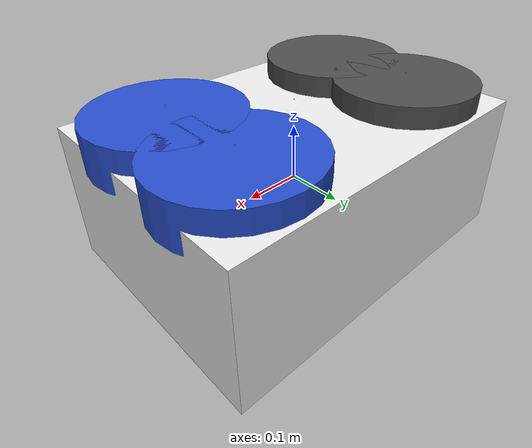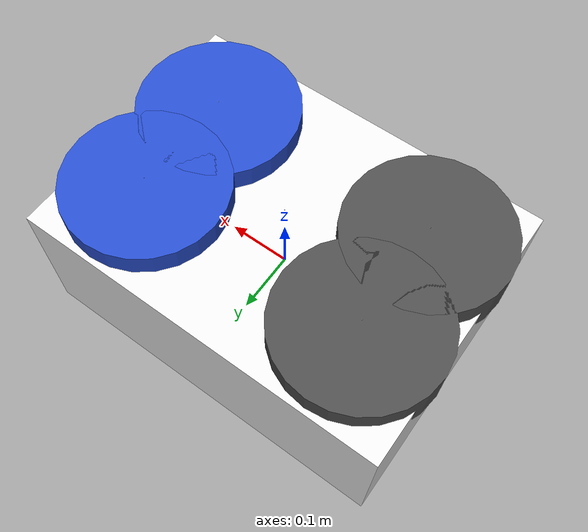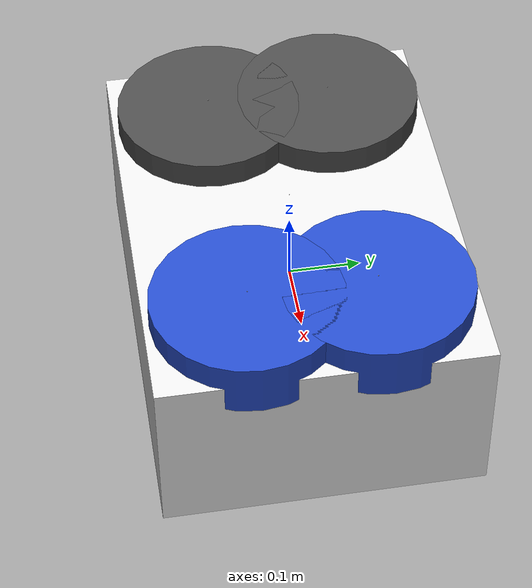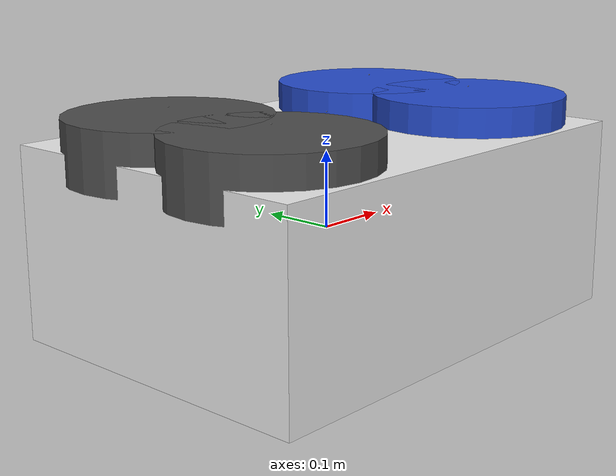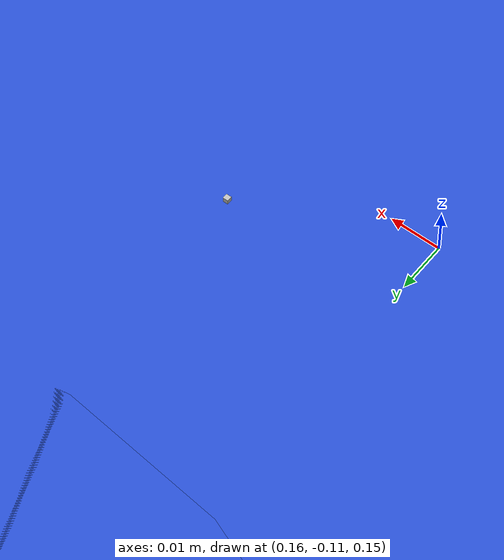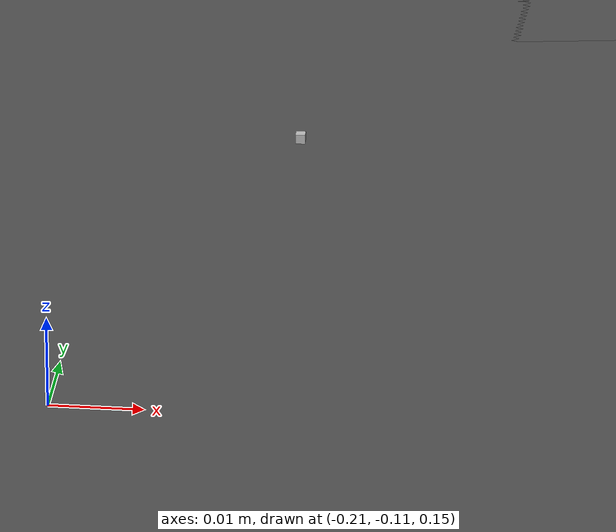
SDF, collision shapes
<?xml version='1.0'?>
<sdf version='1.6'>
  <model name='uav1'>
    <link name='base_link'>
      <pose frame=''>0 0 0 0 -0 0</pose>
      <inertial>
        <pose frame=''>0 0 0 0 -0 0</pose>
        <mass>1.5</mass>
        <inertia>
          <ixx>0.029125</ixx>
          <ixy>0</ixy>
          <ixz>0</ixz>
          <iyy>0.029125</iyy>
          <iyz>0</iyz>
          <izz>0.055225</izz>
        </inertia>
      </inertial>
      <collision name='base_link_inertia_collision'>
        <pose frame=''>0 0 0 0 -0 0</pose>
        <geometry>
          <box>
            <size>0.6082 0.441 0.248</size>
          </box>
        </geometry>
        <surface>
          <contact>
            <ode>
              <min_depth>0.001</min_depth>
              <max_vel>0</max_vel>
            </ode>
          </contact>
          <friction>
            <ode/>
          </friction>
        </surface>
      </collision>
      <visual name='base_link_inertia_visual'>
        <pose frame=''>0 0 0 0 -0 0</pose>
        <geometry>
          <mesh>
            <scale>1 1 1</scale>
            <uri>model://meshes/drone_body.stl</uri>
          </mesh>
        </geometry>
        <material>
          <script>
            <name>Gazebo/White</name>
            <uri>file://media/materials/scripts/gazebo.material</uri>
          </script>
        </material>
      </visual>
      <gravity>1</gravity>
      <velocity_decay/>
    </link>
    <link name='/imu_link'>
      <pose frame=''>0 0 0 0 -0 0</pose>
      <inertial>
        <pose frame=''>0 0 0 0 -0 0</pose>
        <mass>0.015</mass>
        <inertia>
          <ixx>1e-05</ixx>
          <ixy>0</ixy>
          <ixz>0</ixz>
          <iyy>1e-05</iyy>
          <iyz>0</iyz>
          <izz>1e-05</izz>
        </inertia>
      </inertial>
    </link>
    <joint name='/imu_joint' type='revolute'>
      <child>/imu_link</child>
      <parent>base_link</parent>
      <axis>
        <xyz>1 0 0</xyz>
        <limit>
          <lower>0</lower>
          <upper>0</upper>
          <effort>0</effort>
          <velocity>0</velocity>
        </limit>
        <dynamics>
          <spring_reference>0</spring_reference>
          <spring_stiffness>0</spring_stiffness>
        </dynamics>
        <use_parent_model_frame>1</use_parent_model_frame>
      </axis>
    </joint>
    <link name='rotor_0'>
      <pose frame=''>0.18623 -0.085 0.124 0 -0 0</pose>
      <inertial>
        <pose frame=''>0 0 0 0 -0 0</pose>
        <mass>0.005</mass>
        <inertia>
          <ixx>9.75e-07</ixx>
          <ixy>0</ixy>
          <ixz>0</ixz>
          <iyy>0.000273104</iyy>
          <iyz>0</iyz>
          <izz>0.000274004</izz>
        </inertia>
      </inertial>
      <collision name='rotor_0_collision'>
        <pose frame=''>0 0 0 0 -0 0</pose>
        <geometry>
          <cylinder>
            <length>0.0762</length>
            <radius>0.128</radius>
          </cylinder>
        </geometry>
        <surface>
          <contact>
            <ode/>
          </contact>
          <friction>
            <ode/>
          </friction>
        </surface>
      </collision>
      <visual name='rotor_0_visual'>
        <pose frame=''>0 0 0 0 -0 0</pose>
        <geometry>
          <mesh>
            <scale>1 1 1</scale>
            <uri>model://meshes/rotor_spinner.stl</uri>
          </mesh>
        </geometry>
        <material>
          <script>
            <name>Gazebo/Blue</name>
            <uri>file://media/materials/scripts/gazebo.material</uri>
          </script>
        </material>
      </visual>
      <gravity>1</gravity>
      <velocity_decay/>
    </link>
    <joint name='rotor_0_joint' type='revolute'>
      <child>rotor_0</child>
      <parent>base_link</parent>
      <axis>
        <xyz>0 0 1</xyz>
        <limit>
          <lower>-1e+16</lower>
          <upper>1e+16</upper>
        </limit>
        <dynamics>
          <spring_reference>0</spring_reference>
          <spring_stiffness>0</spring_stiffness>
        </dynamics>
        <use_parent_model_frame>1</use_parent_model_frame>
      </axis>
    </joint>
    <link name='rotor_1'>
      <pose frame=''>-0.18623 0.085 0.124 0 -0 0</pose>
      <inertial>
        <pose frame=''>0 0 0 0 -0 0</pose>
        <mass>0.005</mass>
        <inertia>
          <ixx>9.75e-07</ixx>
          <ixy>0</ixy>
          <ixz>0</ixz>
          <iyy>0.000273104</iyy>
          <iyz>0</iyz>
          <izz>0.000274004</izz>
        </inertia>
      </inertial>
      <collision name='rotor_1_collision'>
        <pose frame=''>0 0 0 0 -0 0</pose>
        <geometry>
          <cylinder>
            <length>0.0762</length>
            <radius>0.128</radius>
          </cylinder>
        </geometry>
        <surface>
          <contact>
            <ode/>
          </contact>
          <friction>
            <ode/>
          </friction>
        </surface>
      </collision>
      <visual name='rotor_1_visual'>
        <pose frame=''>0 0 0 0 -0 0</pose>
        <geometry>
          <mesh>
            <scale>1 1 1</scale>
            <uri>model://meshes/rotor_spinner.stl</uri>
          </mesh>
        </geometry>
        <material>
          <script>
            <name>Gazebo/DarkGrey</name>
            <uri>file://media/materials/scripts/gazebo.material</uri>
          </script>
        </material>
      </visual>
      <gravity>1</gravity>
      <velocity_decay/>
    </link>
    <joint name='rotor_1_joint' type='revolute'>
      <child>rotor_1</child>
      <parent>base_link</parent>
      <axis>
        <xyz>0 0 1</xyz>
        <limit>
          <lower>-1e+16</lower>
          <upper>1e+16</upper>
        </limit>
        <dynamics>
          <spring_reference>0</spring_reference>
          <spring_stiffness>0</spring_stiffness>
        </dynamics>
        <use_parent_model_frame>1</use_parent_model_frame>
      </axis>
    </joint>
    <link name='rotor_2'>
      <pose frame=''>0.18623 0.085 0.124 0 -0 0</pose>
      <inertial>
        <pose frame=''>0 0 0 0 -0 0</pose>
        <mass>0.005</mass>
        <inertia>
          <ixx>9.75e-07</ixx>
          <ixy>0</ixy>
          <ixz>0</ixz>
          <iyy>0.000273104</iyy>
          <iyz>0</iyz>
          <izz>0.000274004</izz>
        </inertia>
      </inertial>
      <collision name='rotor_2_collision'>
        <pose frame=''>0 0 0 0 -0 0</pose>
        <geometry>
          <cylinder>
            <length>0.0762</length>
            <radius>0.128</radius>
          </cylinder>
        </geometry>
        <surface>
          <contact>
            <ode/>
          </contact>
          <friction>
            <ode/>
          </friction>
        </surface>
      </collision>
      <visual name='rotor_2_visual'>
        <pose frame=''>0 0 0 0 -0 0</pose>
        <geometry>
          <mesh>
            <scale>1 1 1</scale>
            <uri>model://meshes/rotor_spinner.stl</uri>
          </mesh>
        </geometry>
        <material>
          <script>
            <name>Gazebo/Blue</name>
            <uri>file://media/materials/scripts/gazebo.material</uri>
          </script>
        </material>
      </visual>
      <gravity>1</gravity>
      <velocity_decay/>
    </link>
    <joint name='rotor_2_joint' type='revolute'>
      <child>rotor_2</child>
      <parent>base_link</parent>
      <axis>
        <xyz>0 0 1</xyz>
        <limit>
          <lower>-1e+16</lower>
          <upper>1e+16</upper>
        </limit>
        <dynamics>
          <spring_reference>0</spring_reference>
          <spring_stiffness>0</spring_stiffness>
        </dynamics>
        <use_parent_model_frame>1</use_parent_model_frame>
      </axis>
    </joint>
    <link name='rotor_3'>
      <pose frame=''>-0.18623 -0.085 0.124 0 -0 0</pose>
      <inertial>
        <pose frame=''>0 0 0 0 -0 0</pose>
        <mass>0.005</mass>
        <inertia>
          <ixx>9.75e-07</ixx>
          <ixy>0</ixy>
          <ixz>0</ixz>
          <iyy>0.000273104</iyy>
          <iyz>0</iyz>
          <izz>0.000274004</izz>
        </inertia>
      </inertial>
      <collision name='rotor_3_collision'>
        <pose frame=''>0 0 0 0 -0 0</pose>
        <geometry>
          <cylinder>
            <length>0.0762</length>
            <radius>0.128</radius>
          </cylinder>
        </geometry>
        <surface>
          <contact>
            <ode/>
          </contact>
          <friction>
            <ode/>
          </friction>
        </surface>
      </collision>
      <visual name='rotor_3_visual'>
        <pose frame=''>0 0 0 0 -0 0</pose>
        <geometry>
          <mesh>
            <scale>1 1 1</scale>
            <uri>model://meshes/rotor_spinner.stl</uri>
          </mesh>
        </geometry>
        <material>
          <script>
            <name>Gazebo/DarkGrey</name>
            <uri>file://media/materials/scripts/gazebo.material</uri>
          </script>
        </material>
      </visual>
      <gravity>1</gravity>
      <velocity_decay/>
    </link>
    <joint name='rotor_3_joint' type='revolute'>
      <child>rotor_3</child>
      <parent>base_link</parent>
      <axis>
        <xyz>0 0 1</xyz>
        <limit>
          <lower>-1e+16</lower>
          <upper>1e+16</upper>
        </limit>
        <dynamics>
          <spring_reference>0</spring_reference>
          <spring_stiffness>0</spring_stiffness>
        </dynamics>
        <use_parent_model_frame>1</use_parent_model_frame>
      </axis>
    </joint>

 <!-- Ultrasonic sensors here-->
    <link name="sonar_rotor_0_top">
      <pose frame=''>0.18623 -0.085 0.17 0 -1.5708 0</pose>
    <inertial>
      <pose frame=''>0 0 0 0 0 0</pose>

      <mass>0.001</mass>
      <inertia>
       <ixx>0.000000017</ixx>
       <ixy>0</ixy>
       <ixz>0</ixz>
       <iyy>0.000000017</iyy>
       <iyz>0</iyz>
       <izz>0.000000017</izz>
     </inertia>
    </inertial>
    <collision name="collision">
      <pose frame=''>0 0 0 0 -0 0</pose>
      <geometry>
        <box>
          <size>0.001 0.001 0.001</size>
        </box>
      </geometry>
    </collision>
    <visual name="visual">
      <pose frame=''>0 0 0 0 -0 0</pose>
      <geometry>
        <box>
          <size>0.001 0.001 0.001</size>
        </box>
      </geometry>
    </visual>

    <sensor name="sonar_0_top" type="ray">
      <update_rate>20</update_rate>
      <pose>0 0 0 0 0 0</pose>
      <visualize>false</visualize>
      <ray>
        <scan>
          <horizontal>
            <samples>10</samples>
            <resolution>1</resolution>
            <!-- Minimum angle in radians -->
            <!-- 5 degs -->
            <min_angle>-0.087266</min_angle>
            <max_angle> 0.087266</max_angle>
          </horizontal>
          <vertical>
            <samples>10</samples>
            <resolution>1</resolution>
            <min_angle>-0.087266</min_angle>
            <max_angle> 0.087266</max_angle>
          </vertical>
        </scan>
        <range>
          <min>0.01</min>
          <max>1</max>
          <resolution>0.01</resolution>
        </range>
      </ray>
      <plugin filename="libhector_gazebo_ros_sonar.so" name="gazebo_ros_sonar_controller">
        <topicName>/distance_0_top</topicName>
        <frameId>sonar_rotor_0_top</frameId>
      </plugin>
    </sensor>

  </link>

  <joint name='rotor_0_top_sensor_joint' type='fixed'>
      <parent>rotor_0</parent>
      <child>sonar_rotor_0_top</child>
      <pose> 0 0 0 0 0 0 </pose>
    </joint>

   <link name="sonar_rotor_0_bottom">
      <pose frame=''>0.18623 -0.085 -0.12 0 1.5708 0</pose>
    <inertial>
      <pose frame=''>0 0 0 0 0 0</pose>

      <mass>0.001</mass>
      <inertia>
       <ixx>0.000000017</ixx>
       <ixy>0</ixy>
       <ixz>0</ixz>
       <iyy>0.000000017</iyy>
       <iyz>0</iyz>
       <izz>0.000000017</izz>
     </inertia>
    </inertial>
    <collision name="collision">
      <pose frame=''>0 0 0 0 -0 0</pose>
      <geometry>
        <box>
          <size>0.001 0.001 0.001</size>
        </box>
      </geometry>
    </collision>
    <visual name="visual">
      <pose frame=''>0 0 0 0 -0 0</pose>
      <geometry>
        <box>
          <size>0.001 0.001 0.001</size>
        </box>
      </geometry>
    </visual>

    <sensor name="sonar_0_bottom" type="ray">
      <update_rate>20</update_rate>
      <pose>0 0 0 0 0 0</pose>
      <visualize>false</visualize>
      <ray>
        <scan>
          <horizontal>
            <samples>10</samples>
            <resolution>1</resolution>
            <!-- Minimum angle in radians -->
            <!-- 5 degs -->
            <min_angle>-0.087266</min_angle>
            <max_angle> 0.087266</max_angle>
          </horizontal>
          <vertical>
            <samples>10</samples>
            <resolution>1</resolution>
            <min_angle>-0.087266</min_angle>
            <max_angle> 0.087266</max_angle>
          </vertical>
        </scan>
        <range>
          <min>0.01</min>
          <max>1</max>
          <resolution>0.01</resolution>
        </range>
      </ray>
      <plugin filename="libhector_gazebo_ros_sonar.so" name="gazebo_ros_sonar_controller">
        <topicName>/distance_0_bottom</topicName>
        <frameId>sonar_rotor_0_bottom</frameId>
      </plugin>
    </sensor>

  </link>

  <joint name='rotor_0_bottom_sensor_joint' type='fixed'>
      <parent>rotor_0</parent>
      <child>sonar_rotor_0_bottom</child>
      <pose> 0 0 0 0 0 0 </pose>
    </joint>

  <link name="sonar_rotor_1_top">
      <pose frame=''>-0.18623 0.085 0.17 0 -1.5708 0</pose>
    <inertial>
      <pose frame=''>0 0 0 0 0 0</pose>

      <mass>0.001</mass>
      <inertia>
       <ixx>0.000000017</ixx>
       <ixy>0</ixy>
       <ixz>0</ixz>
       <iyy>0.000000017</iyy>
       <iyz>0</iyz>
       <izz>0.000000017</izz>
     </inertia>
    </inertial>
    <collision name="collision">
      <pose frame=''>0 0 0 0 -0 0</pose>
      <geometry>
        <box>
          <size>0.001 0.001 0.001</size>
        </box>
      </geometry>
    </collision>
    <visual name="visual">
      <pose frame=''>0 0 0 0 -0 0</pose>
      <geometry>
        <box>
          <size>0.001 0.001 0.001</size>
        </box>
      </geometry>
    </visual>

    <sensor name="sonar_1_top" type="ray">
      <update_rate>20</update_rate>
      <pose>0 0 0 0 0 0</pose>
      <visualize>false</visualize>
      <ray>
        <scan>
          <horizontal>
            <samples>10</samples>
            <resolution>1</resolution>
            <!-- Minimum angle in radians -->
            <!-- 5 degs -->
            <min_angle>-0.087266</min_angle>
            <max_angle> 0.087266</max_angle>
          </horizontal>
          <vertical>
            <samples>10</samples>
            <resolution>1</resolution>
            <min_angle>-0.087266</min_angle>
            <max_angle> 0.087266</max_angle>
          </vertical>
        </scan>
        <range>
          <min>0.01</min>
          <max>1</max>
          <resolution>0.01</resolution>
        </range>
      </ray>
      <plugin filename="libhector_gazebo_ros_sonar.so" name="gazebo_ros_sonar_controller">
        <topicName>/distance_1_top</topicName>
        <frameId>sonar_rotor_1_top</frameId>
      </plugin>
    </sensor>

  </link>

  <joint name='rotor_1_top_sensor_joint' type='fixed'>
      <parent>rotor_1</parent>
      <child>sonar_rotor_1_top</child>
      <pose> 0 0 0 0 0 0 </pose>
    </joint>

   <link name="sonar_rotor_1_bottom">
      <pose frame=''>-0.18623 0.085 -0.12 0 1.5708 0</pose>
    <inertial>
      <pose frame=''>0 0 0 0 0 0</pose>

      <mass>0.001</mass>
      <inertia>
       <ixx>0.000000017</ixx>
       <ixy>0</ixy>
       <ixz>0</ixz>
       <iyy>0.000000017</iyy>
       <iyz>0</iyz>
       <izz>0.000000017</izz>
     </inertia>
    </inertial>
    <collision name="collision">
      <pose frame=''>0 0 0 0 -0 0</pose>
      <geometry>
        <box>
          <size>0.001 0.001 0.001</size>
        </box>
      </geometry>
    </collision>
    <visual name="visual">
      <pose frame=''>0 0 0 0 -0 0</pose>
      <geometry>
        <box>
          <size>0.001 0.001 0.001</size>
        </box>
      </geometry>
    </visual>

    <sensor name="sonar_1_bottom" type="ray">
      <update_rate>20</update_rate>
      <pose>0 0 0 0 0 0</pose>
      <visualize>false</visualize>
      <ray>
        <scan>
          <horizontal>
            <samples>10</samples>
            <resolution>1</resolution>
            <!-- Minimum angle in radians -->
            <!-- 5 degs -->
            <min_angle>-0.087266</min_angle>
            <max_angle> 0.087266</max_angle>
          </horizontal>
          <vertical>
            <samples>10</samples>
            <resolution>1</resolution>
            <min_angle>-0.087266</min_angle>
            <max_angle> 0.087266</max_angle>
          </vertical>
        </scan>
        <range>
          <min>0.01</min>
          <max>1</max>
          <resolution>0.01</resolution>
        </range>
      </ray>
      <plugin filename="libhector_gazebo_ros_sonar.so" name="gazebo_ros_sonar_controller">
        <topicName>/distance_1_bottom</topicName>
        <frameId>sonar_rotor_1_bottom</frameId>
      </plugin>
    </sensor>

  </link>

  <joint name='rotor_1_bottom_sensor_joint' type='fixed'>
      <parent>rotor_1</parent>
      <child>sonar_rotor_1_bottom</child>
      <pose> 0 0 0 0 0 0 </pose>
    </joint>

   <link name="sonar_rotor_2_top">
      <pose frame=''>0.18623 0.085 0.17 0 -1.5708 0</pose>
    <inertial>
      <pose frame=''>0 0 0 0 0 0</pose>

      <mass>0.001</mass>
      <inertia>
       <ixx>0.000000017</ixx>
       <ixy>0</ixy>
       <ixz>0</ixz>
       <iyy>0.000000017</iyy>
       <iyz>0</iyz>
       <izz>0.000000017</izz>
     </inertia>
    </inertial>
    <collision name="collision">
      <pose frame=''>0 0 0 0 -0 0</pose>
      <geometry>
        <box>
          <size>0.001 0.001 0.001</size>
        </box>
      </geometry>
    </collision>
    <visual name="visual">
      <pose frame=''>0 0 0 0 -0 0</pose>
      <geometry>
        <box>
          <size>0.001 0.001 0.001</size>
        </box>
      </geometry>
    </visual>

    <sensor name="sonar_2_top" type="ray">
      <update_rate>20</update_rate>
      <pose>0 0 0 0 0 0</pose>
      <visualize>false</visualize>
      <ray>
        <scan>
          <horizontal>
            <samples>10</samples>
            <resolution>1</resolution>
            <!-- Minimum angle in radians -->
            <!-- 5 degs -->
            <min_angle>-0.087266</min_angle>
            <max_angle> 0.087266</max_angle>
          </horizontal>
          <vertical>
            <samples>10</samples>
            <resolution>1</resolution>
            <min_angle>-0.087266</min_angle>
            <max_angle> 0.087266</max_angle>
          </vertical>
        </scan>
        <range>
          <min>0.01</min>
          <max>1</max>
          <resolution>0.01</resolution>
        </range>
      </ray>
      <plugin filename="libhector_gazebo_ros_sonar.so" name="gazebo_ros_sonar_controller">
        <topicName>/distance_2_top</topicName>
        <frameId>sonar_rotor_2_top</frameId>
      </plugin>
    </sensor>

  </link>

  <joint name='rotor_2_top_sensor_joint' type='fixed'>
      <parent>rotor_2</parent>
      <child>sonar_rotor_2_top</child>
      <pose> 0 0 0 0 0 0 </pose>
    </joint>

   <link name="sonar_rotor_2_bottom">
      <pose frame=''>0.18623 0.085 -0.12 0 1.5708 0</pose>
    <inertial>
      <pose frame=''>0 0 0 0 0 0</pose>

      <mass>0.001</mass>
      <inertia>
       <ixx>0.000000017</ixx>
       <ixy>0</ixy>
       <ixz>0</ixz>
       <iyy>0.000000017</iyy>
       <iyz>0</iyz>
       <izz>0.000000017</izz>
     </inertia>
    </inertial>
    <collision name="collision">
      <pose frame=''>0 0 0 0 -0 0</pose>
      <geometry>
        <box>
          <size>0.001 0.001 0.001</size>
        </box>
      </geometry>
    </collision>
    <visual name="visual">
      <pose frame=''>0 0 0 0 -0 0</pose>
      <geometry>
        <box>
          <size>0.001 0.001 0.001</size>
        </box>
      </geometry>
    </visual>

    <sensor name="sonar_2_bottom" type="ray">
      <update_rate>20</update_rate>
      <pose>0 0 0 0 0 0</pose>
      <visualize>false</visualize>
      <ray>
        <scan>
          <horizontal>
            <samples>10</samples>
            <resolution>1</resolution>
            <!-- Minimum angle in radians -->
            <!-- 5 degs -->
            <min_angle>-0.087266</min_angle>
            <max_angle> 0.087266</max_angle>
          </horizontal>
          <vertical>
            <samples>10</samples>
            <resolution>1</resolution>
            <min_angle>-0.087266</min_angle>
            <max_angle> 0.087266</max_angle>
          </vertical>
        </scan>
        <range>
          <min>0.01</min>
          <max>1</max>
          <resolution>0.01</resolution>
        </range>
      </ray>
      <plugin filename="libhector_gazebo_ros_sonar.so" name="gazebo_ros_sonar_controller">
        <topicName>/distance_2_bottom</topicName>
        <frameId>sonar_rotor_2_bottom</frameId>
      </plugin>
    </sensor>

  </link>

  <joint name='rotor_2_bottom_sensor_joint' type='fixed'>
      <parent>rotor_2</parent>
      <child>sonar_rotor_2_bottom</child>
      <pose> 0 0 0 0 0 0 </pose>
    </joint>

  <link name="sonar_rotor_3_top">
      <pose frame=''>-0.18623 -0.085 0.17 0 -1.5708 0</pose>
    <inertial>
      <pose frame=''>0 0 0 0 0 0</pose>

      <mass>0.001</mass>
      <inertia>
       <ixx>0.000000017</ixx>
       <ixy>0</ixy>
       <ixz>0</ixz>
       <iyy>0.000000017</iyy>
       <iyz>0</iyz>
       <izz>0.000000017</izz>
     </inertia>
    </inertial>
    <collision name="collision">
      <pose frame=''>0 0 0 0 -0 0</pose>
      <geometry>
        <box>
          <size>0.001 0.001 0.001</size>
        </box>
      </geometry>
    </collision>
    <visual name="visual">
      <pose frame=''>0 0 0 0 -0 0</pose>
      <geometry>
        <box>
          <size>0.001 0.001 0.001</size>
        </box>
      </geometry>
    </visual>

    <sensor name="sonar_3_top" type="ray">
      <update_rate>20</update_rate>
      <pose>0 0 0 0 0 0</pose>
      <visualize>false</visualize>
      <ray>
        <scan>
          <horizontal>
            <samples>10</samples>
            <resolution>1</resolution>
            <!-- Minimum angle in radians -->
            <!-- 5 degs -->
            <min_angle>-0.087266</min_angle>
            <max_angle> 0.087266</max_angle>
          </horizontal>
          <vertical>
            <samples>10</samples>
            <resolution>1</resolution>
            <min_angle>-0.087266</min_angle>
            <max_angle> 0.087266</max_angle>
          </vertical>
        </scan>
        <range>
          <min>0.01</min>
          <max>1</max>
          <resolution>0.01</resolution>
        </range>
      </ray>
      <plugin filename="libhector_gazebo_ros_sonar.so" name="gazebo_ros_sonar_controller">
        <topicName>/distance_3_top</topicName>
        <frameId>sonar_rotor_3_top</frameId>
      </plugin>
    </sensor>

  </link>

  <joint name='rotor_3_top_sensor_joint' type='fixed'>
      <parent>rotor_3</parent>
      <child>sonar_rotor_3_top</child>
      <pose> 0 0 0 0 0 0 </pose>
    </joint>

   <link name="sonar_rotor_3_bottom">
      <pose frame=''>-0.18623 -0.085 -0.12 0 1.5708 0</pose>
    <inertial>
      <pose frame=''>0 0 0 0 0 0</pose>

      <mass>0.001</mass>
      <inertia>
       <ixx>0.000000017</ixx>
       <ixy>0</ixy>
       <ixz>0</ixz>
       <iyy>0.000000017</iyy>
       <iyz>0</iyz>
       <izz>0.000000017</izz>
     </inertia>
    </inertial>
    <collision name="collision">
      <pose frame=''>0 0 0 0 -0 0</pose>
      <geometry>
        <box>
          <size>0.001 0.001 0.001</size>
        </box>
      </geometry>
    </collision>
    <visual name="visual">
      <pose frame=''>0 0 0 0 -0 0</pose>
      <geometry>
        <box>
          <size>0.001 0.001 0.001</size>
        </box>
      </geometry>
    </visual>

    <sensor name="sonar_3_bottom" type="ray">
      <update_rate>20</update_rate>
      <pose>0 0 0 0 0 0</pose>
      <visualize>false</visualize>
      <ray>
        <scan>
          <horizontal>
            <samples>10</samples>
            <resolution>1</resolution>
            <!-- Minimum angle in radians -->
            <!-- 5 degs -->
            <min_angle>-0.087266</min_angle>
            <max_angle> 0.087266</max_angle>
          </horizontal>
          <vertical>
            <samples>10</samples>
            <resolution>1</resolution>
            <min_angle>-0.087266</min_angle>
            <max_angle> 0.087266</max_angle>
          </vertical>
        </scan>
        <range>
          <min>0.01</min>
          <max>1</max>
          <resolution>0.01</resolution>
        </range>
      </ray>
      <plugin filename="libhector_gazebo_ros_sonar.so" name="gazebo_ros_sonar_controller">
        <topicName>/distance_3_bottom</topicName>
        <frameId>sonar_rotor_3_bottom</frameId>
      </plugin>
    </sensor>

  </link>

  <joint name='rotor_3_bottom_sensor_joint' type='fixed'>
      <parent>rotor_3</parent>
      <child>sonar_rotor_3_bottom</child>
      <pose> 0 0 0 0 0 0 </pose>
    </joint>

<!-- motor-->

    <plugin name='rosbag' filename='libgazebo_multirotor_base_plugin.so'>
      <robotNamespace/>
      <linkName>base_link</linkName>
      <rotorVelocitySlowdownSim>10</rotorVelocitySlowdownSim>
    </plugin>
    <plugin name='front_right_motor_model' filename='libgazebo_motor_model_gdp2020.so'>
      <robotNamespace/>
      <jointName>rotor_0_joint</jointName>
      <linkName>rotor_0</linkName>
      <turningDirection>ccw</turningDirection>
      <timeConstantUp>0.0125</timeConstantUp>
      <timeConstantDown>0.025</timeConstantDown>
      <maxRotVelocity>1100</maxRotVelocity>
      <motorConstant>8.54858e-06</motorConstant>
      <momentConstant>0.06</momentConstant>
      <commandSubTopic>/gazebo/command/motor_speed</commandSubTopic>
      <motorNumber>0</motorNumber>
      <rotorDragCoefficient>0.000806428</rotorDragCoefficient>
      <rollingMomentCoefficient>1e-06</rollingMomentCoefficient>
      <motorSpeedPubTopic>/motor_speed/0</motorSpeedPubTopic>
      <rotorVelocitySlowdownSim>10</rotorVelocitySlowdownSim>
    </plugin>
    <plugin name='back_left_motor_model' filename='libgazebo_motor_model_gdp2020.so'>
      <robotNamespace/>
      <jointName>rotor_1_joint</jointName>
      <linkName>rotor_1</linkName>
      <turningDirection>ccw</turningDirection>
      <timeConstantUp>0.0125</timeConstantUp>
      <timeConstantDown>0.025</timeConstantDown>
      <maxRotVelocity>1100</maxRotVelocity>
      <motorConstant>8.54858e-06</motorConstant>
      <momentConstant>0.06</momentConstant>
      <commandSubTopic>/gazebo/command/motor_speed</commandSubTopic>
      <motorNumber>1</motorNumber>
      <rotorDragCoefficient>0.000806428</rotorDragCoefficient>
      <rollingMomentCoefficient>1e-06</rollingMomentCoefficient>
      <motorSpeedPubTopic>/motor_speed/1</motorSpeedPubTopic>
      <rotorVelocitySlowdownSim>10</rotorVelocitySlowdownSim>
    </plugin>
    <plugin name='front_left_motor_model' filename='libgazebo_motor_model_gdp2020.so'>
      <robotNamespace/>
      <jointName>rotor_2_joint</jointName>
      <linkName>rotor_2</linkName>
      <turningDirection>cw</turningDirection>
      <timeConstantUp>0.0125</timeConstantUp>
      <timeConstantDown>0.025</timeConstantDown>
      <maxRotVelocity>1100</maxRotVelocity>
      <motorConstant>8.54858e-06</motorConstant>
      <momentConstant>0.06</momentConstant>
      <commandSubTopic>/gazebo/command/motor_speed</commandSubTopic>
      <motorNumber>2</motorNumber>
      <rotorDragCoefficient>0.000806428</rotorDragCoefficient>
      <rollingMomentCoefficient>1e-06</rollingMomentCoefficient>
      <motorSpeedPubTopic>/motor_speed/2</motorSpeedPubTopic>
      <rotorVelocitySlowdownSim>10</rotorVelocitySlowdownSim>
    </plugin>
    <plugin name='back_right_motor_model' filename='libgazebo_motor_model_gdp2020.so'>
      <robotNamespace/>
      <jointName>rotor_3_joint</jointName>
      <linkName>rotor_3</linkName>
      <turningDirection>cw</turningDirection>
      <timeConstantUp>0.0125</timeConstantUp>
      <timeConstantDown>0.025</timeConstantDown>
      <maxRotVelocity>1100</maxRotVelocity>
      <motorConstant>8.54858e-06</motorConstant>
      <momentConstant>0.06</momentConstant>
      <commandSubTopic>/gazebo/command/motor_speed</commandSubTopic>
      <motorNumber>3</motorNumber>
      <rotorDragCoefficient>0.000806428</rotorDragCoefficient>
      <rollingMomentCoefficient>1e-06</rollingMomentCoefficient>
      <motorSpeedPubTopic>/motor_speed/3</motorSpeedPubTopic>
      <rotorVelocitySlowdownSim>10</rotorVelocitySlowdownSim>
    </plugin>
    <plugin name='gps_plugin' filename='libgazebo_gps_plugin.so'>
      <robotNamespace/>
      <gpsNoise>1</gpsNoise>
    </plugin>
    <plugin name='magnetometer_plugin' filename='libgazebo_magnetometer_plugin.so'>
      <robotNamespace/>
      <pubRate>20</pubRate>
      <noiseDensity>0.0004</noiseDensity>
      <randomWalk>6.4e-06</randomWalk>
      <biasCorrelationTime>600</biasCorrelationTime>
      <magTopic>/mag</magTopic>
    </plugin>
    <plugin name='barometer_plugin' filename='libgazebo_barometer_plugin.so'>
      <robotNamespace/>
      <pubRate>10</pubRate>
      <baroTopic>/baro</baroTopic>
    </plugin>
    <plugin name='mavlink_interface' filename='libgazebo_mavlink_interface.so'>
      <robotNamespace/>
      <imuSubTopic>/imu</imuSubTopic>
      <gpsSubTopic>/gps</gpsSubTopic>
      <magSubTopic>/mag</magSubTopic>
      <baroSubTopic>/baro</baroSubTopic>
      <mavlink_addr>INADDR_ANY</mavlink_addr>
      <mavlink_udp_port>14560</mavlink_udp_port>
      <mavlink_tcp_port>4560</mavlink_tcp_port>
      <serialEnabled>0</serialEnabled>
      <serialDevice>/dev/ttyACM0</serialDevice>
      <baudRate>921600</baudRate>
      <qgc_addr>INADDR_ANY</qgc_addr>
      <qgc_udp_port>14550</qgc_udp_port>
      <sdk_addr>INADDR_ANY</sdk_addr>
      <sdk_udp_port>14540</sdk_udp_port>
      <hil_mode>0</hil_mode>
      <hil_state_level>0</hil_state_level>
      <vehicle_is_tailsitter>0</vehicle_is_tailsitter>
      <send_vision_estimation>1</send_vision_estimation>
      <send_odometry>0</send_odometry>
      <enable_lockstep>1</enable_lockstep>
      <use_tcp>1</use_tcp>
      <motorSpeedCommandPubTopic>/gazebo/command/motor_speed</motorSpeedCommandPubTopic>
      <control_channels>
        <channel name='rotor1'>
          <input_index>0</input_index>
          <input_offset>0</input_offset>
          <input_scaling>1000</input_scaling>
          <zero_position_disarmed>0</zero_position_disarmed>
          <zero_position_armed>100</zero_position_armed>
          <joint_control_type>velocity</joint_control_type>
        </channel>
        <channel name='rotor2'>
          <input_index>1</input_index>
          <input_offset>0</input_offset>
          <input_scaling>1000</input_scaling>
          <zero_position_disarmed>0</zero_position_disarmed>
          <zero_position_armed>100</zero_position_armed>
          <joint_control_type>velocity</joint_control_type>
        </channel>
        <channel name='rotor3'>
          <input_index>2</input_index>
          <input_offset>0</input_offset>
          <input_scaling>1000</input_scaling>
          <zero_position_disarmed>0</zero_position_disarmed>
          <zero_position_armed>100</zero_position_armed>
          <joint_control_type>velocity</joint_control_type>
        </channel>
        <channel name='rotor4'>
          <input_index>3</input_index>
          <input_offset>0</input_offset>
          <input_scaling>1000</input_scaling>
          <zero_position_disarmed>0</zero_position_disarmed>
          <zero_position_armed>100</zero_position_armed>
          <joint_control_type>velocity</joint_control_type>
        </channel>
        <channel name='rotor5'>
          <input_index>4</input_index>
          <input_offset>1</input_offset>
          <input_scaling>324.6</input_scaling>
          <zero_position_disarmed>0</zero_position_disarmed>
          <zero_position_armed>0</zero_position_armed>
          <joint_control_type>velocity</joint_control_type>
          <joint_control_pid>
            <p>0.1</p>
            <i>0</i>
            <d>0</d>
            <iMax>0.0</iMax>
            <iMin>0.0</iMin>
            <cmdMax>2</cmdMax>
            <cmdMin>-2</cmdMin>
          </joint_control_pid>
          <joint_name>zephyr_delta_wing::propeller_joint</joint_name>
        </channel>
        <channel name='rotor6'>
          <input_index>5</input_index>
          <input_offset>0</input_offset>
          <input_scaling>0.524</input_scaling>
          <zero_position_disarmed>0</zero_position_disarmed>
          <zero_position_armed>0</zero_position_armed>
          <joint_control_type>position</joint_control_type>
          <joint_name>zephyr_delta_wing::flap_left_joint</joint_name>
          <joint_control_pid>
            <p>10.0</p>
            <i>0</i>
            <d>0</d>
            <iMax>0</iMax>
            <iMin>0</iMin>
            <cmdMax>20</cmdMax>
            <cmdMin>-20</cmdMin>
          </joint_control_pid>
        </channel>
        <channel name='rotor7'>
          <input_index>6</input_index>
          <input_offset>0</input_offset>
          <input_scaling>0.524</input_scaling>
          <zero_position_disarmed>0</zero_position_disarmed>
          <zero_position_armed>0</zero_position_armed>
          <joint_control_type>position</joint_control_type>
          <joint_name>zephyr_delta_wing::flap_right_joint</joint_name>
          <joint_control_pid>
            <p>10.0</p>
            <i>0</i>
            <d>0</d>
            <iMax>0</iMax>
            <iMin>0</iMin>
            <cmdMax>20</cmdMax>
            <cmdMin>-20</cmdMin>
          </joint_control_pid>
        </channel>
        <channel name='rotor8'>
          <input_index>7</input_index>
          <input_offset>0</input_offset>
          <input_scaling>0.524</input_scaling>
          <zero_position_disarmed>0</zero_position_disarmed>
          <zero_position_armed>0</zero_position_armed>
          <joint_control_type>position</joint_control_type>
        </channel>
      </control_channels>
    </plugin>
    <static>0</static>
    <plugin name='rotors_gazebo_imu_plugin' filename='libgazebo_imu_plugin.so'>
      <robotNamespace/>
      <linkName>/imu_link</linkName>
      <imuTopic>/imu</imuTopic>
      <gyroscopeNoiseDensity>0.0003394</gyroscopeNoiseDensity>
      <gyroscopeRandomWalk>3.8785e-05</gyroscopeRandomWalk>
      <gyroscopeBiasCorrelationTime>1000.0</gyroscopeBiasCorrelationTime>
      <gyroscopeTurnOnBiasSigma>0.0087</gyroscopeTurnOnBiasSigma>
      <accelerometerNoiseDensity>0.004</accelerometerNoiseDensity>
      <accelerometerRandomWalk>0.006</accelerometerRandomWalk>
      <accelerometerBiasCorrelationTime>300.0</accelerometerBiasCorrelationTime>
      <accelerometerTurnOnBiasSigma>0.196</accelerometerTurnOnBiasSigma>
    </plugin>

  <!-- for stereo camera - Tai Ming-->
    <joint name='stereo_cam_joint' type='fixed'>
      <parent>base_link</parent>
      <child>stereo_camera</child>
      <pose> 0 0 0 0 0 0 </pose>
    </joint>

    <link name="stereo_camera">
      <pose>0.25 0 0.02 0 0 0</pose>
      <inertial>
        <mass>0.001</mass>
        <inertia>
          <ixx>0.00000166667</ixx>
          <iyy>0.00000166667</iyy>
          <izz>0.00000166667</izz>
        </inertia>
      </inertial>
      <visual name="visual">
        <geometry>
          <box>
            <size>0.015 0.1 0.02</size>
          </box>
        </geometry>
      </visual>
      <sensor name="camera" type="multicamera">
        <always_on>1</always_on>
        <update_rate>30</update_rate>
        <visualize>true</visualize>
        <camera name="left">
          <pose>0 0.06 0 0 0 0</pose>
          <horizontal_fov>1.5708</horizontal_fov>
          <image>
            <width>752</width>
            <height>480</height>
            <format>R8G8B8</format>
          </image>
          <clip>
            <near>0.1</near>
            <far>300</far>
          </clip>
        </camera>
        <camera name="right">
          <pose>0 -0.06 0 0 0 0</pose>
          <horizontal_fov>1.5708</horizontal_fov>
          <image>
            <width>752</width>
            <height>480</height>
            <format>R8G8B8</format>
          </image>
          <clip>
            <near>0.1</near>
            <far>300</far>
          </clip>
          <noise>
            <type>gaussian</type>
            <mean>0.0</mean>
            <stddev>0.01</stddev>
          </noise>
        </camera>
        <plugin name="stereo_camera_controller" filename="libgazebo_ros_multicamera.so">
          <robotNamespace></robotNamespace>
          <alwaysOn>true</alwaysOn>
          <updateRate>0.0</updateRate>
          <cameraName>/stereo_camera</cameraName>
          <imageTopicName>image_raw</imageTopicName>
          <cameraInfoTopicName>camera_info</cameraInfoTopicName>
          <frameName>stereo_camera_frame</frameName>
          <hackBaseline>0.12</hackBaseline>
          <Fx>376.0</Fx>
          <Fy>376.0</Fy>
          <Cx>376.0</Cx>
          <Cy>240.0</Cy>
          <distortionK1>0</distortionK1>
          <distortionK2>0</distortionK2>
          <distortionK3>0.0</distortionK3>
          <distortionT1>0</distortionT1>
          <distortionT2>0</distortionT2>
        </plugin>
      </sensor>
    </link>

    <!-- for 360 lidar - Tai Ming-->
    <joint name='lidar_joint' type='fixed'>
      <parent>base_link</parent>
      <child>lidar</child>
      <pose> 0 0 0 0 0 0 </pose>
    </joint>

    <link name="lidar">
      <pose> 0 0 -0.04 0 0 0 </pose>
   <inertial>
    <mass>0.001</mass>
     <inertia> <!-- inertias are tricky to compute -->
     <ixx>0.001</ixx>
     <!-- for a box: ixx = 0.083 * mass * (y*y + z*z) -->
    <ixy>0.0</ixy>
    <!-- for a box: ixy = 0 -->
    <ixz>0.0</ixz>
    <!-- for a box: ixz = 0 -->
    <iyy>0.001</iyy>
    <!-- for a box: iyy = 0.083 * mass * (x*x + z*z) -->
    <iyz>0.0</iyz>
    <!-- for a box: iyz = 0 -->
      <izz>0.001</izz>
    <!-- for a box: izz = 0.083 * mass * (x*x + y*y) -->
    </inertia>
   </inertial>
      <visual name="visual">
        <geometry>
          <mesh>
            <uri>model://hokuyo_lidar/meshes/hokuyo.dae</uri>
          </mesh>
        </geometry>
      </visual>
      <collision name="lidar_collision_base">
        <pose>0 0 -0.0145 0 0 0</pose>
        <geometry>
          <box>
            <size>0.05 0.05 0.041</size>
          </box>
        </geometry>
      </collision>
      <collision name="lidar_collision_top">
        <pose>0 0 0.0205 0 0 0</pose>
        <geometry>
          <cylinder>
            <radius>0.021</radius>
            <length>0.029</length>
          </cylinder>
        </geometry>
      </collision>
      <sensor name="laser" type="ray">
        <pose>0.01 0 0.0175 0 -0 0</pose>
        <ray>
          <scan>
            <horizontal>
              <samples>640</samples>
              <resolution>1</resolution>
              <min_angle>-3.14</min_angle>
              <max_angle>3.14</max_angle>
            </horizontal>
          </scan>
          <range>
            <min>0.08</min>
            <max>10</max>
            <resolution>0.01</resolution>
          </range>
          <noise>
            <type>gaussian</type>
            <mean>0.0</mean>
            <stddev>0.01</stddev>
          </noise>
        </ray>

  <plugin name="gazebo_ros_head_hokuyo_controller" filename="libgazebo_ros_laser.so">
         <robotNamespace></robotNamespace>
         <topicName>/uav1/lidar/range</topicName>
         <frameName>lidar_laser_2d</frameName>
  </plugin>
        <always_on>1</always_on>
        <update_rate>500</update_rate>
        <visualize>true</visualize>
      </sensor>

    </link>

    <!-- for ultrasonic sensor top- Tai Ming-->

    <joint name='ultrasonic_sensor_top_joint' type='fixed'>
      <parent>base_link</parent>
      <child>ultrasonic_sensor_top</child>
      <pose> 0 0 0 0 0 0 </pose>
    </joint>

    <link name="ultrasonic_sensor_top">
      <pose frame=''>0 0 0.15 0 -1.5708 0</pose>
    <inertial>
      <pose frame=''>0 0 0 0 0 0</pose>

      <mass>0.001</mass>
      <inertia>
       <ixx>0.000000017</ixx>
       <ixy>0</ixy>
       <ixz>0</ixz>
       <iyy>0.000000017</iyy>
       <iyz>0</iyz>
       <izz>0.000000017</izz>
     </inertia>
    </inertial>
    <collision name="collision">
      <pose frame=''>0 0 0 0 -0 0</pose>
      <geometry>
        <box>
          <size>0.001 0.001 0.001</size>
        </box>
      </geometry>
    </collision>
    <visual name="visual">
      <pose frame=''>0 0 0 0 -0 0</pose>
      <geometry>
        <box>
          <size>0.001 0.001 0.001</size>
        </box>
      </geometry>
    </visual>

    <sensor name="ultrasonic_top" type="ray">
      <update_rate>20</update_rate>
      <pose>0 0 0 0 0 0</pose>
      <visualize>true</visualize>
      <ray>
        <scan>
          <horizontal>
            <samples>10</samples>
            <resolution>1</resolution>
            <!-- Minimum angle in radians -->
            <!-- 5 degs -->
            <min_angle>-0.087266</min_angle>
            <max_angle> 0.087266</max_angle>
          </horizontal>
          <vertical>
            <samples>10</samples>
            <resolution>1</resolution>
            <min_angle>-0.087266</min_angle>
            <max_angle> 0.087266</max_angle>
          </vertical>
        </scan>
        <range>
          <min>0.01</min>
          <max>2</max>
          <resolution>0.01</resolution>
        </range>
        <noise>
          <type>gaussian</type>
          <mean>0.0</mean>
          <stddev>0.01</stddev>
        </noise>
      </ray>
      <plugin filename="libhector_gazebo_ros_sonar.so" name="gazebo_ros_sonar_controller">
        <topicName>/uav1/ultrasonic/top</topicName>
        <frameId>ultrasonic_sensor_top</frameId>
      </plugin>
    </sensor>

  </link>

  <!-- for ultrasonic sensor front- Tai Ming-->

    <joint name='ultrasonic_sensor_front_joint' type='fixed'>
      <parent>base_link</parent>
      <child>ultrasonic_sensor_front</child>
      <pose> 0 0 0 0 0 0 </pose>
    </joint>

    <link name="ultrasonic_sensor_front">
      <pose frame=''>0.3 0 0.0085 0 0 0</pose>
    <inertial>
      <pose frame=''>0 0 0 0 0 0</pose>

      <mass>0.001</mass>
      <inertia>
       <ixx>0.000000017</ixx>
       <ixy>0</ixy>
       <ixz>0</ixz>
       <iyy>0.000000017</iyy>
       <iyz>0</iyz>
       <izz>0.000000017</izz>
     </inertia>
    </inertial>
    <collision name="collision">
      <pose frame=''>0 0 0 0 -0 0</pose>
      <geometry>
        <box>
          <size>0.001 0.001 0.001</size>
        </box>
      </geometry>
    </collision>
    <visual name="visual">
      <pose frame=''>0 0 0 0 -0 0</pose>
      <geometry>
        <box>
          <size>0.001 0.001 0.001</size>
        </box>
      </geometry>
    </visual>

    <sensor name="ultrasonic_front" type="ray">
      <update_rate>20</update_rate>
      <pose>0 0 0 0 0 0</pose>
      <visualize>true</visualize>
      <ray>
        <scan>
          <horizontal>
            <samples>10</samples>
            <resolution>1</resolution>
            <!-- Minimum angle in radians -->
            <!-- 5 degs -->
            <min_angle>-0.087266</min_angle>
            <max_angle> 0.087266</max_angle>
          </horizontal>
          <vertical>
            <samples>10</samples>
            <resolution>1</resolution>
            <min_angle>-0.087266</min_angle>
            <max_angle> 0.087266</max_angle>
          </vertical>
        </scan>
        <range>
          <min>0.01</min>
          <max>2</max>
          <resolution>0.01</resolution>
        </range>
        <noise>
           <type>gaussian</type>
           <mean>0.0</mean>
           <stddev>0.01</stddev>
        </noise>
      </ray>
      <plugin filename="libhector_gazebo_ros_sonar.so" name="gazebo_ros_sonar_controller">
        <topicName>/uav1/ultrasonic/front</topicName>
        <frameId>ultrasonic_sensor_front</frameId>
      </plugin>
    </sensor>

  </link>

  <!-- for ultrasonic sensor bottom- Tai Ming-->

    <joint name='ultrasonic_sensor_bottom_joint' type='fixed'>
      <parent>base_link</parent>
      <child>ultrasonic_sensor_bottom</child>
      <pose> 0 0 0 0 0 0 </pose>
    </joint>

    <link name="ultrasonic_sensor_bottom">
      <pose frame=''> 0 0 -0.12 0 1.5708 0 </pose>
    <inertial>
      <pose frame=''>0 0 0 0 0 0</pose>

      <mass>0.001</mass>
      <inertia>
       <ixx>0.000000017</ixx>
       <ixy>0</ixy>
       <ixz>0</ixz>
       <iyy>0.000000017</iyy>
       <iyz>0</iyz>
       <izz>0.000000017</izz>
     </inertia>
    </inertial>
    <collision name="collision">
      <pose frame=''>0 0 0 0 -0 0</pose>
      <geometry>
        <box>
          <size>0.001 0.001 0.001</size>
        </box>
      </geometry>
    </collision>
    <visual name="visual">
      <pose frame=''>0 0 0 0 -0 0</pose>
      <geometry>
        <box>
          <size>0.001 0.001 0.001</size>
        </box>
      </geometry>
    </visual>

    <sensor name="ultrasonic_bottom" type="ray">
      <update_rate>20</update_rate>
      <pose>0 0 0 0 0 0</pose>
      <visualize>true</visualize>
      <ray>
        <scan>
          <horizontal>
            <samples>10</samples>
            <resolution>1</resolution>
            <!-- Minimum angle in radians -->
            <!-- 5 degs -->
            <min_angle>-0.087266</min_angle>
            <max_angle> 0.087266</max_angle>
          </horizontal>
          <vertical>
            <samples>10</samples>
            <resolution>1</resolution>
            <min_angle>-0.087266</min_angle>
            <max_angle> 0.087266</max_angle>
          </vertical>
        </scan>
        <range>
          <min>0.01</min>
          <max>2</max>
          <resolution>0.01</resolution>
        </range>
        <noise>
           <type>gaussian</type>
           <mean>0.0</mean>
           <stddev>0.01</stddev>
        </noise>
      </ray>
      <plugin filename="libhector_gazebo_ros_sonar.so" name="gazebo_ros_sonar_controller">
        <topicName>/uav1/ultrasonic/bottom</topicName>
        <frameId>ultrasonic_sensor_bottom</frameId>
      </plugin>
    </sensor>

  </link>

  </model>
</sdf>
